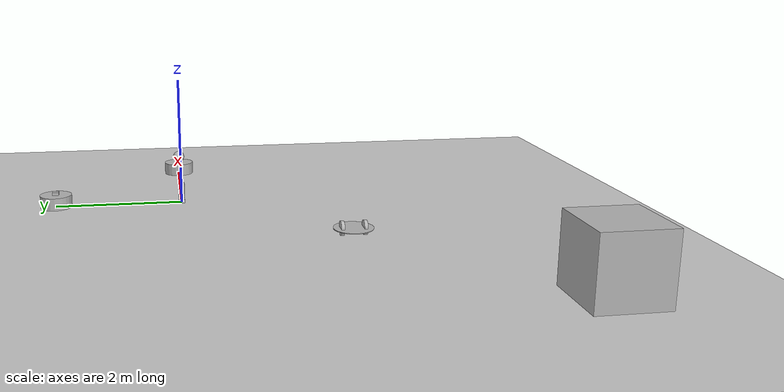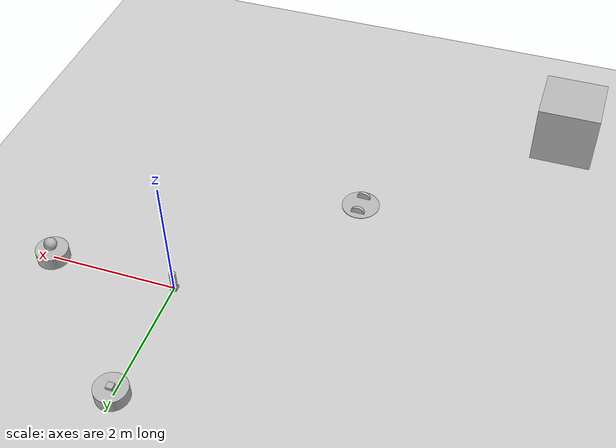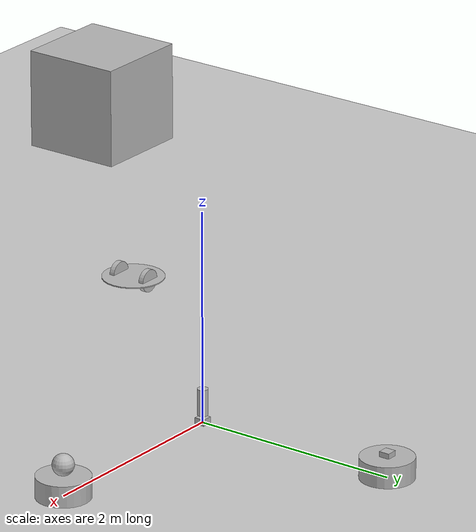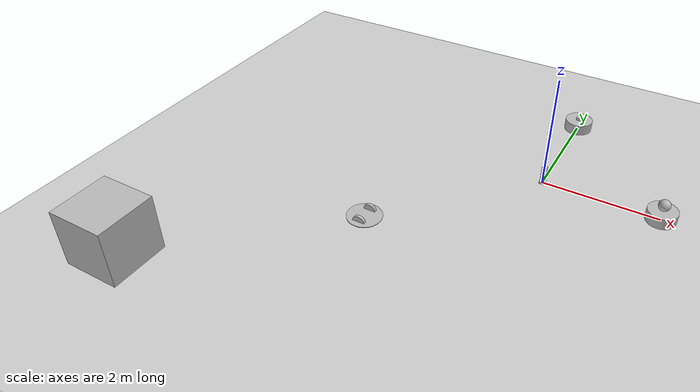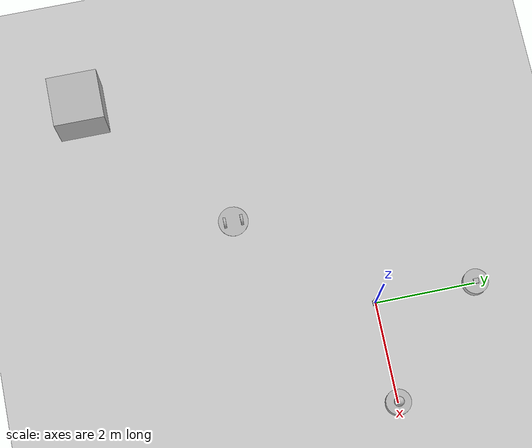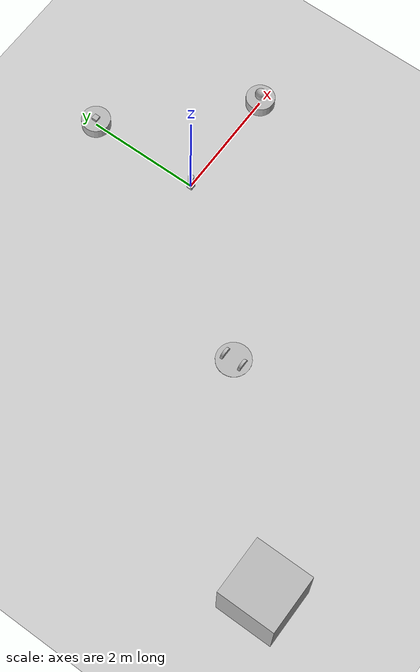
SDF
<!-- /* Copyright 2020 The MathWorks, Inc. -->
<?xml version="1.0"?>
<sdf version="1.4">
  <world name="default">
    <include>
      <uri>model://ground_plane</uri>
    </include>

    <include>
      <uri>model://sun</uri>
    </include>

  <model name ='unit_box'>
    <pose>-5 -5 0.5 0 0 0</pose>
    <link name ='link'>
      <pose>0 0 0 0 0 0</pose>
      <collision name ='collision'>
        <geometry>
          <box><size>1 1 1</size></box>
        </geometry>
      </collision>
      <visual name ='visual'>
        <geometry>
          <box><size>1 1 1</size></box>
        </geometry>
      </visual>
    </link>
  </model>

   <model name = "2_body">

    <pose>0 2 0 0 0 0</pose>

    <link name = "base">
      <pose>0 0 0.1 0 0 0</pose>
      <visual name = "visual">
        <geometry>
          <cylinder>
            <radius>0.25</radius>
            <length>0.2</length>
          </cylinder>
        </geometry>
      </visual>
    </link>

    <link name = "follower">
      <pose>0 0 0.2 0 0 0</pose>
      <visual name = "visual">
        <geometry>
          <box>
            <size>0.1 0.1 0.1</size>
          </box>
        </geometry>
      </visual>
    </link>

    <joint name="base_joint" type ="fixed">
      <pose>0 2 0 0 0 0</pose>
      <parent>world</parent>
      <child>base</child>
    </joint>

    <joint name="follower_joint" type ="revolute">
      <pose>0 0 0 0 0 0</pose>
      <parent>base</parent>
      <child>follower</child>
      <axis>
        <xyz>0 0 1</xyz>
      </axis>
    </joint>
  </model>

  <model name = "3_body">

    <pose>2 0 0 0 0 0</pose>

    <link name = "base">
      <pose>0 0 0.1 0 0 0</pose>
      <visual name = "visual">
        <geometry>
          <cylinder>
            <radius>0.25</radius>
            <length>0.2</length>
          </cylinder>
        </geometry>
      </visual>
    </link>

    <link name = "follower">
      <pose>0 0 0.3 0 0 0</pose>
      <visual name = "visual">
        <geometry>
            <sphere>
              <radius>0.1</radius>
            </sphere>
        </geometry>
      </visual>
    </link>

    <joint name="base_joint" type ="fixed">
      <pose>0 2 0 0 0 0</pose>
      <parent>world</parent>
      <child>base</child>
    </joint>

    <joint name='follower_joint' type='revolute2'>
        <parent>base</parent>
        <child>follower</child>

        <axis>
          <xyz>0 1 0</xyz>
        </axis>
        <axis2>
          <xyz>1 0 0</xyz>
        </axis2>
    </joint>

  </model>

  <model name='universal_joint'>
     <link name='parent_link'>
        <pose frame=''>0 0 0 0 0 0</pose>
        <inertial>
          <inertia>
            <ixx>0.0016667</ixx>
            <ixy>0</ixy>
            <ixz>0</ixz>
            <iyy>0.0016667</iyy>
            <iyz>0</iyz>
            <izz>0.0016667</izz>
          </inertia>
          <pose frame=''>0 0 0 0 0 0</pose>
          <mass>1</mass>
        </inertial>
        <collision name='parent_link_collision'>
          <geometry>
            <box>
              <size>0.1 0.1 0.1</size>
            </box>
          </geometry>
          <max_contacts>10</max_contacts>
        </collision>
        <visual name='parent_link_visual'>
          <geometry>
            <box>
              <size>0.1 0.1 0.1</size>
            </box>
          </geometry>
        </visual>
        <self_collide>0</self_collide>
        <enable_wind>0</enable_wind>
        <kinematic>0</kinematic>
      </link>

      <link name='child_link'>
        <pose frame=''>0 0 0.2 0 0 0 </pose>
        <inertial>
          <inertia>
            <ixx>0.0058333</ixx>
            <ixy>0</ixy>
            <ixz>0</ixz>
            <iyy>0.0058333</iyy>
            <iyz>0</iyz>
            <izz>0.00125</izz>
          </inertia>
          <pose frame=''>-0.02 0.02 0 0 0 0</pose>
          <mass>1</mass>
        </inertial>
        <collision name='child_link_collision'>
          <geometry>
            <cylinder>
              <radius>0.05</radius>
              <length>0.25</length>
            </cylinder>
          </geometry>
          <max_contacts>10</max_contacts>
        </collision>
        <visual name='child_link_visual'>
          <geometry>
            <cylinder>
              <radius>0.05</radius>
              <length>0.25</length>
            </cylinder>
          </geometry>
        </visual>
        <self_collide>0</self_collide>
        <enable_wind>0</enable_wind>
        <kinematic>0</kinematic>
      </link>
      <joint name='universal_joint' type='universal'>
        <parent>parent_link</parent>
        <child>child_link</child>
        <pose frame=''>0 0 0.2 0 0 0</pose>
	<axis>
        <xyz>0 0 1</xyz>
      </axis>
      </joint>
   </model>

   <model name='two_wheel_vehicle'>
      <link name='base_link'>
        <pose frame=''>0.1 0 0.11 0 -0 0</pose>
        <inertial>
          <mass>0.0001</mass>
          <inertia>
            <ixx>0.07</ixx>
            <iyy>0.08</iyy>
            <izz>0.1</izz>
            <ixy>0</ixy>
            <ixz>0</ixz>
            <iyz>0</iyz>
          </inertia>
          <pose frame=''>0 0 0 0 -0 0</pose>
        </inertial>
        <collision name='collision'>
          <geometry>
            <box>
              <size>0.445 0.277 0.17</size>
            </box>
          </geometry>
          <max_contacts>10</max_contacts>
          <surface>
            <contact>
              <ode/>
            </contact>
            <bounce/>
            <friction>
              <torsional>
                <ode/>
              </torsional>
              <ode/>
            </friction>
          </surface>
        </collision>

        <visual name='visual'>
          <geometry>
            <cylinder>
              <radius>0.3</radius>
              <length>0.01</length>
            </cylinder>
          </geometry>
        </visual>
        <self_collide>0</self_collide>
        <enable_wind>0</enable_wind>
        <kinematic>0</kinematic>
      </link>
      <link name='right_wheel_link'>
        <pose frame=''>0.1 -0.17 0.11 -0 1.5707 1.5707</pose>
        <inertial>
          <mass>2</mass>
          <inertia>
            <ixx>0.0051</ixx>
            <iyy>0.0051</iyy>
            <izz>0.009</izz>
            <ixy>0</ixy>
            <ixz>0</ixz>
            <iyz>0</iyz>
          </inertia>
          <pose frame=''>0 0 0 0 -0 0</pose>
        </inertial>
        <collision name='collision'>
          <geometry>
            <cylinder>
              <radius>0.11</radius>
              <length>0.05</length>
            </cylinder>
          </geometry>
          <surface>
            <friction>
              <ode>
                <mu>100000</mu>
                <mu2>100000</mu2>
                <slip1>0</slip1>
                <slip2>0</slip2>
              </ode>
              <torsional>
                <ode/>
              </torsional>
            </friction>
            <contact>
              <ode/>
            </contact>
            <bounce/>
          </surface>
          <max_contacts>10</max_contacts>
        </collision>
        <visual name='visual'>
          <geometry>
            <cylinder>
              <radius>0.11</radius>
              <length>0.05</length>
            </cylinder>
          </geometry>
        </visual>
        <self_collide>0</self_collide>
        <enable_wind>0</enable_wind>
        <kinematic>0</kinematic>
      </link>
      <link name='left_wheel_link'>
        <pose frame=''>0.1 0.17 0.11 -0 1.5707 1.5707</pose>
        <inertial>
          <mass>2</mass>
          <inertia>
            <ixx>0.0051</ixx>
            <iyy>0.0051</iyy>
            <izz>0.009</izz>
            <ixy>0</ixy>
            <ixz>0</ixz>
            <iyz>0</iyz>
          </inertia>
          <pose frame=''>0 0 0 0 -0 0</pose>
        </inertial>
        <collision name='collision'>
          <geometry>
            <cylinder>
              <radius>0.11</radius>
              <length>0.05</length>
            </cylinder>
          </geometry>
          <surface>
            <friction>
              <ode>
                <mu>100000</mu>
                <mu2>100000</mu2>
                <slip1>0</slip1>
                <slip2>0</slip2>
              </ode>
              <torsional>
                <ode/>
              </torsional>
            </friction>
            <contact>
              <ode/>
            </contact>
            <bounce/>
          </surface>
          <max_contacts>10</max_contacts>
        </collision>
        <visual name='visual'>
          <geometry>
            <cylinder>
              <radius>0.11</radius>
              <length>0.05</length>
            </cylinder>
          </geometry>
        </visual>
        <self_collide>0</self_collide>
        <enable_wind>0</enable_wind>
        <kinematic>0</kinematic>
      </link>
      <joint name='left_wheel_joint' type='revolute'>
        <pose frame=''>0 0 -0.03 0 -0 0</pose>
        <child>left_wheel_link</child>
        <parent>base_link</parent>
        <axis>
          <xyz>0 1 0</xyz>
          <use_parent_model_frame>1</use_parent_model_frame>
          <limit>
            <lower>-1e+16</lower>
            <upper>1e+16</upper>
          </limit>
          <dynamics>
            <spring_reference>0</spring_reference>
            <spring_stiffness>0</spring_stiffness>
          </dynamics>
        </axis>
      </joint>
      <joint name='right_wheel_joint' type='revolute'>
        <pose frame=''>0 0 0.03 0 -0 0</pose>
        <child>right_wheel_link</child>
        <parent>base_link</parent>
        <axis>
          <xyz>0 1 0</xyz>
          <use_parent_model_frame>1</use_parent_model_frame>
          <limit>
            <lower>-1e+16</lower>
            <upper>1e+16</upper>
          </limit>
          <dynamics>
            <spring_reference>0</spring_reference>
            <spring_stiffness>0</spring_stiffness>
          </dynamics>
        </axis>
      </joint>
      <pose frame=''>-2.2482 -2.42165 0 0 -0 0</pose>
    </model>

    <plugin name="GazeboPlugin" filename="lib/libGazeboCoSimPlugin.so"><portNumber>14581</portNumber></plugin>
  </world>
</sdf>
